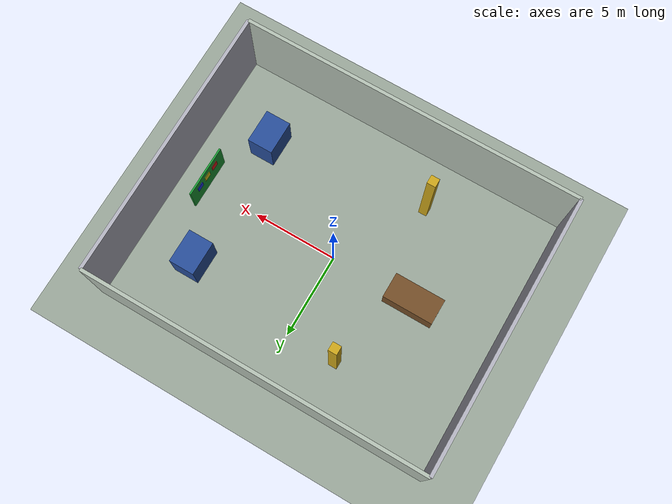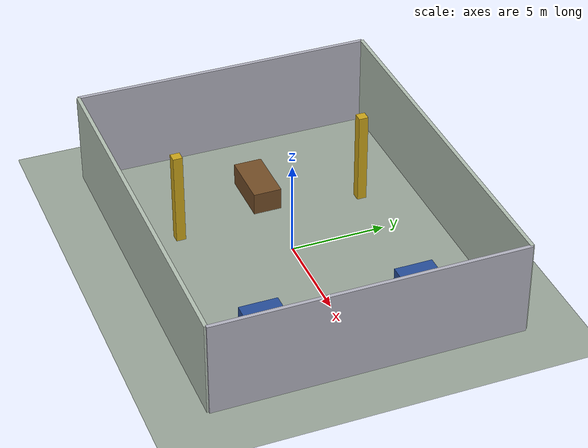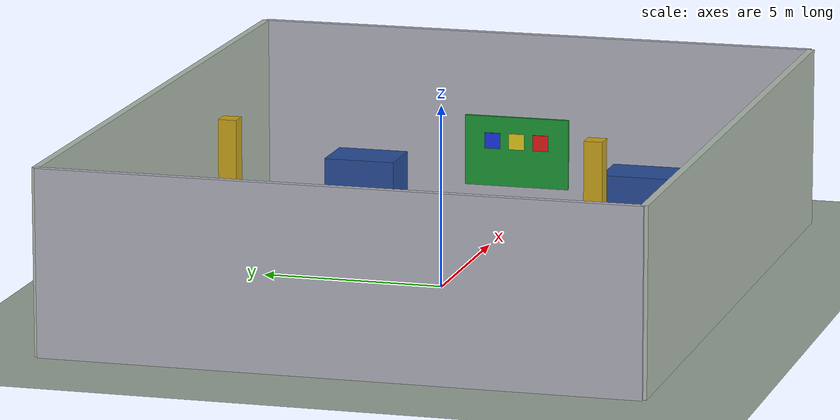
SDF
<sdf version="1.9">
 <world name="lab">
  <physics name="physics" type="ignored">
   <max_step_size>0.004</max_step_size>
   <real_time_factor>1</real_time_factor>
  </physics>
  <gravity>0 0 -9.81</gravity>
  <magnetic_field>6e-06 2.3e-05 -4.2e-05</magnetic_field>
  <atmosphere type="adiabatic"/>
  <spherical_coordinates>
   <surface_model>EARTH_WGS84</surface_model>
   <world_frame_orientation>ENU</world_frame_orientation>
   <latitude_deg>47.397742</latitude_deg>
   <longitude_deg>8.545594</longitude_deg>
   <elevation>488</elevation>
   <heading_deg>0</heading_deg>
  </spherical_coordinates>
  <plugin filename="gz-sim-physics-system" name="gz::sim::systems::Physics"/>
  <plugin filename="gz-sim-user-commands-system" name="gz::sim::systems::UserCommands"/>
  <plugin filename="gz-sim-scene-broadcaster-system" name="gz::sim::systems::SceneBroadcaster"/>
  <plugin filename="gz-sim-imu-system" name="gz::sim::systems::Imu"/>
  <plugin filename="gz-sim-air-pressure-system" name="gz::sim::systems::AirPressure"/>
  <plugin filename="gz-sim-navsat-system" name="gz::sim::systems::NavSat"/>
  <plugin filename="gz-sim-magnetometer-system" name="gz::sim::systems::Magnetometer"/>
  <light name="sun" type="directional">
   <pose>0 0 10 0 0 0</pose>
   <direction>-0.3 0.2 -0.9</direction>
   <diffuse>0.9 0.9 0.9 1</diffuse>
  </light>
  <model name="ground">
   <static>true</static>
   <link name="ground_link">
    <collision name="collision">
     <geometry><plane><normal>0 0 1</normal><size>100 100</size></plane></geometry>
    </collision>
    <visual name="visual">
     <geometry><plane><normal>0 0 1</normal><size>100 100</size></plane></geometry>
     <material><diffuse>0.6 0.65 0.6 1</diffuse></material>
    </visual>
   </link>
  </model>
  <plugin filename="gz-sim-sensors-system" name="gz::sim::systems::Sensors">
   <render_engine>ogre2</render_engine>
  </plugin>
  <model name="east_wall">
   <static>true</static>
   <pose>10 0 2.5 0 0 0</pose>
   <link name="link">
    <collision name="collision"><geometry><box><size>0.2 16 5</size></box></geometry></collision>
    <visual name="visual">
     <geometry><box><size>0.2 16 5</size></box></geometry>
     <material><ambient>0.7 0.7 0.75 1</ambient><diffuse>0.7 0.7 0.75 1</diffuse></material>
    </visual>
   </link>
  </model>
  <model name="west_wall">
   <static>true</static>
   <pose>-10 0 2.5 0 0 0</pose>
   <link name="link">
    <collision name="collision"><geometry><box><size>0.2 16 5</size></box></geometry></collision>
    <visual name="visual">
     <geometry><box><size>0.2 16 5</size></box></geometry>
     <material><ambient>0.7 0.7 0.75 1</ambient><diffuse>0.7 0.7 0.75 1</diffuse></material>
    </visual>
   </link>
  </model>
  <model name="north_wall">
   <static>true</static>
   <pose>0 8 2.5 0 0 0</pose>
   <link name="link">
    <collision name="collision"><geometry><box><size>20 0.2 5</size></box></geometry></collision>
    <visual name="visual">
     <geometry><box><size>20 0.2 5</size></box></geometry>
     <material><ambient>0.7 0.75 0.7 1</ambient><diffuse>0.7 0.75 0.7 1</diffuse></material>
    </visual>
   </link>
  </model>
  <model name="south_wall">
   <static>true</static>
   <pose>0 -8 2.5 0 0 0</pose>
   <link name="link">
    <collision name="collision"><geometry><box><size>20 0.2 5</size></box></geometry></collision>
    <visual name="visual">
     <geometry><box><size>20 0.2 5</size></box></geometry>
     <material><ambient>0.7 0.75 0.7 1</ambient><diffuse>0.7 0.75 0.7 1</diffuse></material>
    </visual>
   </link>
  </model>
  <model name="bench">
   <static>true</static>
   <pose>-5 0 0.6 0 0 0</pose>
   <link name="link">
    <collision name="collision"><geometry><box><size>3 1.5 1.2</size></box></geometry></collision>
    <visual name="visual">
     <geometry><box><size>3 1.5 1.2</size></box></geometry>
     <material><ambient>0.45 0.3 0.15 1</ambient><diffuse>0.45 0.3 0.15 1</diffuse></material>
    </visual>
   </link>
  </model>
  <model name="cabinet_a">
   <static>true</static>
   <pose>6.5 4 1 0 0 0</pose>
   <link name="link">
    <collision name="collision"><geometry><box><size>1.5 2 2</size></box></geometry></collision>
    <visual name="visual">
     <geometry><box><size>1.5 2 2</size></box></geometry>
     <material><ambient>0.15 0.3 0.6 1</ambient><diffuse>0.15 0.3 0.6 1</diffuse></material>
    </visual>
   </link>
  </model>
  <model name="cabinet_b">
   <static>true</static>
   <pose>6.5 -4 1 0 0 0</pose>
   <link name="link">
    <collision name="collision"><geometry><box><size>1.5 2 2</size></box></geometry></collision>
    <visual name="visual">
     <geometry><box><size>1.5 2 2</size></box></geometry>
     <material><ambient>0.15 0.3 0.6 1</ambient><diffuse>0.15 0.3 0.6 1</diffuse></material>
    </visual>
   </link>
  </model>
  <model name="column_a">
   <static>true</static>
   <pose>-3 5 2.5 0 0 0</pose>
   <link name="link">
    <collision name="collision"><geometry><box><size>0.5 0.5 5</size></box></geometry></collision>
    <visual name="visual">
     <geometry><box><size>0.5 0.5 5</size></box></geometry>
     <material><ambient>0.8 0.65 0.1 1</ambient><diffuse>0.8 0.65 0.1 1</diffuse></material>
    </visual>
   </link>
  </model>
  <model name="column_b">
   <static>true</static>
   <pose>-3 -5 2.5 0 0 0</pose>
   <link name="link">
    <collision name="collision"><geometry><box><size>0.5 0.5 5</size></box></geometry></collision>
    <visual name="visual">
     <geometry><box><size>0.5 0.5 5</size></box></geometry>
     <material><ambient>0.8 0.65 0.1 1</ambient><diffuse>0.8 0.65 0.1 1</diffuse></material>
    </visual>
   </link>
  </model>
  <model name="inspection_panel">
   <static>true</static>
   <pose>8 0 2 0 0 0</pose>
   <link name="link">
    <collision name="collision"><geometry><box><size>0.1 3 2</size></box></geometry></collision>
    <visual name="visual">
     <geometry><box><size>0.1 3 2</size></box></geometry>
     <material><ambient>0.1 0.6 0.2 1</ambient><diffuse>0.1 0.6 0.2 1</diffuse></material>
    </visual>
   </link>
  </model>
  <model name="panel_red">
   <static>true</static>
   <pose>7.94 -0.7 2.3 0 0 0</pose>
   <link name="link">
    <collision name="collision"><geometry><box><size>0.03 0.45 0.45</size></box></geometry></collision>
    <visual name="visual">
     <geometry><box><size>0.03 0.45 0.45</size></box></geometry>
     <material><ambient>0.9 0.1 0.1 1</ambient><diffuse>0.9 0.1 0.1 1</diffuse></material>
    </visual>
   </link>
  </model>
  <model name="panel_yellow">
   <static>true</static>
   <pose>7.94 0 2.3 0 0 0</pose>
   <link name="link">
    <collision name="collision"><geometry><box><size>0.03 0.45 0.45</size></box></geometry></collision>
    <visual name="visual">
     <geometry><box><size>0.03 0.45 0.45</size></box></geometry>
     <material><ambient>0.9 0.8 0.1 1</ambient><diffuse>0.9 0.8 0.1 1</diffuse></material>
    </visual>
   </link>
  </model>
  <model name="panel_blue">
   <static>true</static>
   <pose>7.94 0.7 2.3 0 0 0</pose>
   <link name="link">
    <collision name="collision"><geometry><box><size>0.03 0.45 0.45</size></box></geometry></collision>
    <visual name="visual">
     <geometry><box><size>0.03 0.45 0.45</size></box></geometry>
     <material><ambient>0.1 0.2 0.9 1</ambient><diffuse>0.1 0.2 0.9 1</diffuse></material>
    </visual>
   </link>
  </model>
 </world>
</sdf>
